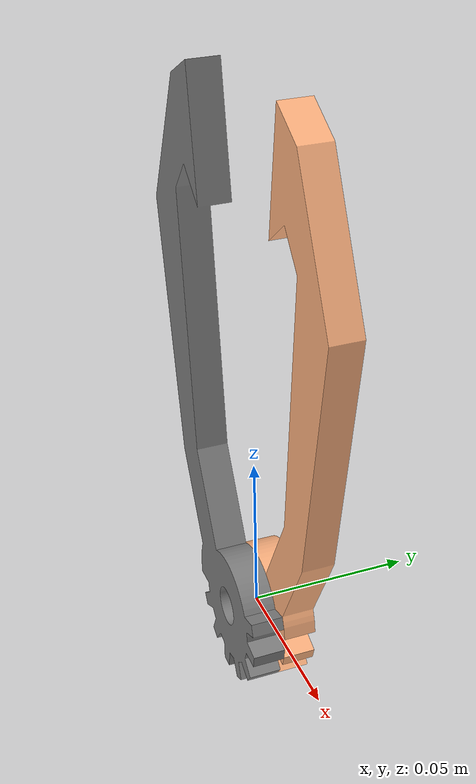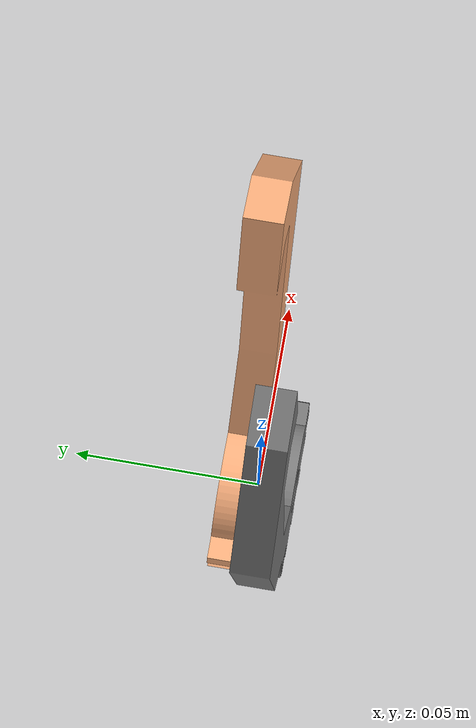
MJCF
<mujoco>
    <compiler meshdir="../meshes/Gripper" angle="radian"/>

    <include file="materials.xml" />

    <default>
        <default class="visual">
            <geom pos="0.0 0.0 0.0" euler="0 0 0" />
        </default>
    </default>

    <asset>
        <mesh name="Gripper1" file="Gripper1.stl" scale="2.0 2.0 2.0" />
        <mesh name="Gripper2" file="Gripper2.stl" scale="2.0 2.0 2.0" />
    </asset>

    <worldbody>
        <body name="Gripper1" pos="0.0 0.0 0.0" euler="1.57 0 0.5">

            <geom type="mesh" mesh="Gripper1" class="visual" material="silver" mass="0.1" contype="1" conaffinity="1" friction="2.0 0.05 0.001" condim="4" />
        </body>
        <body name="Gripper2" pos="0 0 0.0" euler="1.57 3.14 0.5">
            <geom type="mesh" mesh="Gripper2" class="visual" material="brown" mass="0.1" contype="1" conaffinity="1" friction="2.0 0.05 0.001" condim="4" />
        </body>
    </worldbody>
</mujoco>

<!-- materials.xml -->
<mujoco>

    <default>
        <mesh scale="0.001 0.001 0.001" />
        <geom contype="0" conaffinity="0" mass="0" />
    </default>

    <asset>
        <texture type="skybox" builtin="gradient" rgb1=".3 .5 .7" rgb2="1 1 1" width="32" height="512"/>
        <material name="blue" rgba="0.0 0.3 0.7 0.9" />
        <material name="black" rgba="0.2 0.2 0.2 0.9" />
        <material name="deep_black" rgba="0.1 0.1 0.1 0.9" />
        <material name="silver" rgba="0.5 0.5 0.5 1" />
        <material name="brown" rgba="1 0.7 0.5 0.9" />
    </asset>
</mujoco>
